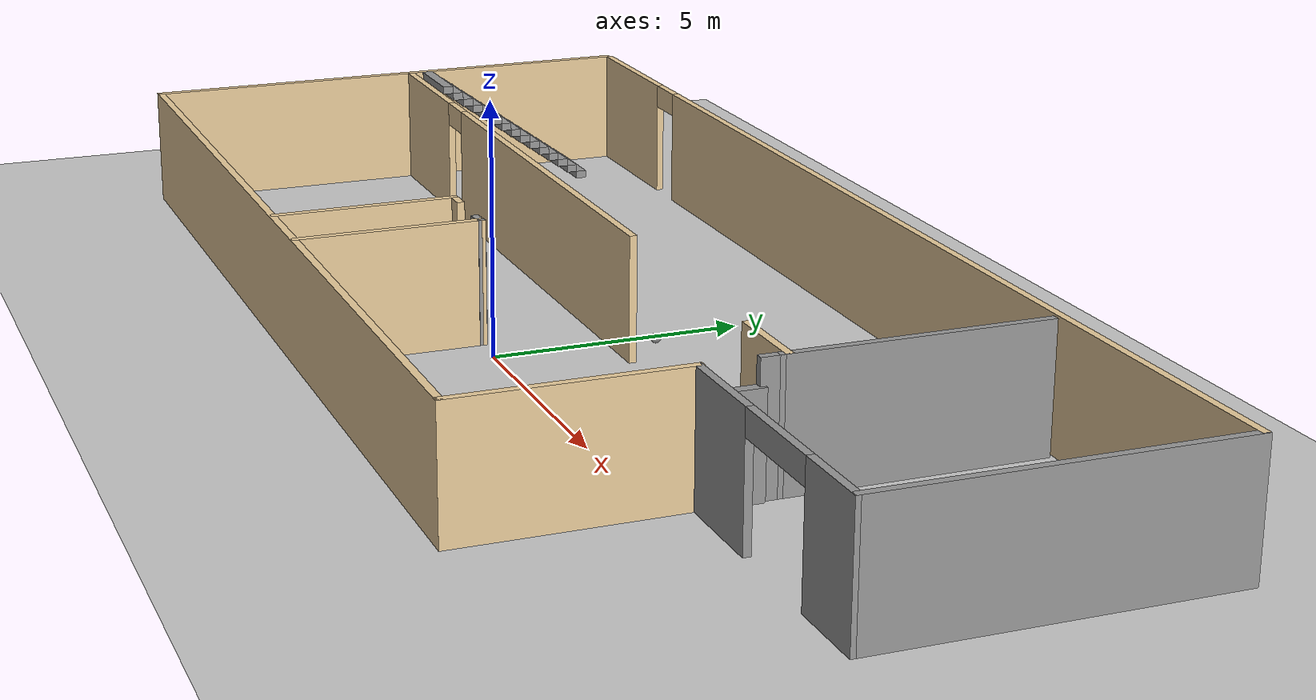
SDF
<sdf version="1.6">
 <world name="default">
  <plugin name="hello" filename="libhello.so"/>
  <light name="sun" type="directional">
   <pose>0 0 10 0 -0 0</pose>
   <diffuse>0.8 0.8 0.8 1</diffuse>
   <specular>0.2 0.2 0.2 1</specular>
   <attenuation>
    <range>1000</range>
    <constant>0.9</constant>
    <linear>0.01</linear>
    <quadratic>0.001</quadratic>
   </attenuation>
   <direction>-0.5 0.1 -0.9</direction>
  </light>
  <model name="ground_plane">
   <static>1</static>
   <link name="link">
    <collision name="collision">
     <geometry><plane><normal>0 0 1</normal><size>100 100</size></plane></geometry>
     <surface>
      <contact><collide_bitmask>65535</collide_bitmask></contact>
      <friction><ode><mu>100</mu><mu2>50</mu2></ode></friction>
     </surface>
    </collision>
    <visual name="visual">
     <cast_shadows>0</cast_shadows>
     <geometry><plane><normal>0 0 1</normal><size>100 100</size></plane></geometry>
     <material>
      <script><uri>file://media/materials/scripts/gazebo.material</uri><name>Gazebo/Grey</name></script>
     </material>
    </visual>
   </link>
  </model>
  <gravity>0 0 -9.8</gravity>
  <magnetic_field>6e-06 2.3e-05 -4.2e-05</magnetic_field>
  <atmosphere type="adiabatic"/>
  <physics name="default_physics" default="0" type="ode">
   <max_step_size>0.001</max_step_size>
   <real_time_factor>1</real_time_factor>
   <real_time_update_rate>1000</real_time_update_rate>
  </physics>
  <scene><ambient>0.4 0.4 0.4 1</ambient><background>0.7 0.7 0.7 1</background><shadows>1</shadows></scene>
  <spherical_coordinates>
   <surface_model>EARTH_WGS84</surface_model>
   <latitude_deg>0</latitude_deg>
   <longitude_deg>0</longitude_deg>
   <elevation>0</elevation>
   <heading_deg>0</heading_deg>
  </spherical_coordinates>
  <model name="building">
   <pose>0.37263 1.88759 0 0 -0 0</pose>
   <link name="Door_3">
    <collision name="Door_3_Collision">
     <geometry><box><size>1.03688 0.2 2</size></box></geometry>
     <pose>0 0 1 0 -0 0</pose>
    </collision>
    <visual name="Door_3_Visual">
     <pose>0 0 1 0 -0 0</pose>
     <geometry><box><size>1.03688 0.2 2</size></box></geometry>
     <material>
      <script><uri>file://media/materials/scripts/gazebo.material</uri><name>Gazebo/Grey</name></script>
     </material>
    </visual>
    <pose>7.76057 -0.531725 0 0 -0 1.56812</pose>
   </link>
   <link name="Door_4">
    <collision name="Door_4_Collision">
     <geometry><box><size>1.03688 0.2 2</size></box></geometry>
     <pose>0 0 1 0 -0 0</pose>
    </collision>
    <visual name="Door_4_Visual">
     <pose>0 0 1 0 -0 0</pose>
     <geometry><box><size>1.03688 0.2 2</size></box></geometry>
     <material>
      <script><uri>file://media/materials/scripts/gazebo.material</uri><name>Gazebo/Grey</name></script>
     </material>
    </visual>
    <pose>-1.9603 -1.81882 0 0 -0 0</pose>
   </link>
   <link name="Stairs_0">
    <visual name="Stairs_0_Visual_0">
     <pose>-12.4918 4.12213 0.083333 0 -0 0</pose>
     <geometry><box><size>1.62352 0.233333 0.166667</size></box></geometry>
     <material>
      <script><uri>file://media/materials/scripts/gazebo.material</uri><name>Gazebo/Grey</name></script>
      <ambient>1 1 1 1</ambient>
     </material>
     <meta><layer>0</layer></meta>
    </visual>
    <collision name="Stairs_0_Collision_0">
     <geometry><box><size>1.62352 0.233333 0.166667</size></box></geometry>
     <pose>-12.4918 4.12213 0.083333 0 -0 0</pose>
    </collision>
    <visual name="Stairs_0_Visual_1">
     <pose>-12.4918 3.8888 0.25 0 -0 0</pose>
     <geometry><box><size>1.62352 0.233333 0.166667</size></box></geometry>
     <material>
      <script><uri>file://media/materials/scripts/gazebo.material</uri><name>Gazebo/Grey</name></script>
      <ambient>1 1 1 1</ambient>
     </material>
     <meta><layer>0</layer></meta>
    </visual>
    <collision name="Stairs_0_Collision_1">
     <geometry><box><size>1.62352 0.233333 0.166667</size></box></geometry>
     <pose>-12.4918 3.8888 0.25 0 -0 0</pose>
    </collision>
    <visual name="Stairs_0_Visual_2">
     <pose>-12.4918 3.65546 0.416667 0 -0 0</pose>
     <geometry><box><size>1.62352 0.233333 0.166667</size></box></geometry>
     <material>
      <script><uri>file://media/materials/scripts/gazebo.material</uri><name>Gazebo/Grey</name></script>
      <ambient>1 1 1 1</ambient>
     </material>
     <meta><layer>0</layer></meta>
    </visual>
    <collision name="Stairs_0_Collision_2">
     <geometry><box><size>1.62352 0.233333 0.166667</size></box></geometry>
     <pose>-12.4918 3.65546 0.416667 0 -0 0</pose>
    </collision>
    <visual name="Stairs_0_Visual_3">
     <pose>-12.4918 3.42213 0.583333 0 -0 0</pose>
     <geometry><box><size>1.62352 0.233333 0.166667</size></box></geometry>
     <material>
      <script><uri>file://media/materials/scripts/gazebo.material</uri><name>Gazebo/Grey</name></script>
      <ambient>1 1 1 1</ambient>
     </material>
     <meta><layer>0</layer></meta>
    </visual>
    <collision name="Stairs_0_Collision_3">
     <geometry><box><size>1.62352 0.233333 0.166667</size></box></geometry>
     <pose>-12.4918 3.42213 0.583333 0 -0 0</pose>
    </collision>
    <visual name="Stairs_0_Visual_4">
     <pose>-12.4918 3.18879 0.75 0 -0 0</pose>
     <geometry><box><size>1.62352 0.233333 0.166667</size></box></geometry>
     <material>
      <script><uri>file://media/materials/scripts/gazebo.material</uri><name>Gazebo/Grey</name></script>
      <ambient>1 1 1 1</ambient>
     </material>
     <meta><layer>0</layer></meta>
    </visual>
    <collision name="Stairs_0_Collision_4">
     <geometry><box><size>1.62352 0.233333 0.166667</size></box></geometry>
     <pose>-12.4918 3.18879 0.75 0 -0 0</pose>
    </collision>
    <visual name="Stairs_0_Visual_5">
     <pose>-12.4918 2.95546 0.916667 0 -0 0</pose>
     <geometry><box><size>1.62352 0.233333 0.166667</size></box></geometry>
     <material>
      <script><uri>file://media/materials/scripts/gazebo.material</uri><name>Gazebo/Grey</name></script>
      <ambient>1 1 1 1</ambient>
     </material>
     <meta><layer>0</layer></meta>
    </visual>
    <collision name="Stairs_0_Collision_5">
     <geometry><box><size>1.62352 0.233333 0.166667</size></box></geometry>
     <pose>-12.4918 2.95546 0.916667 0 -0 0</pose>
    </collision>
    <visual name="Stairs_0_Visual_6">
     <pose>-12.4918 2.72213 1.08333 0 -0 0</pose>
     <geometry><box><size>1.62352 0.233333 0.166667</size></box></geometry>
     <material>
      <script><uri>file://media/materials/scripts/gazebo.material</uri><name>Gazebo/Grey</name></script>
      <ambient>1 1 1 1</ambient>
     </material>
     <meta><layer>0</layer></meta>
    </visual>
    <collision name="Stairs_0_Collision_6">
     <geometry><box><size>1.62352 0.233333 0.166667</size></box></geometry>
     <pose>-12.4918 2.72213 1.08333 0 -0 0</pose>
    </collision>
    <visual name="Stairs_0_Visual_7">
     <pose>-12.4918 2.4888 1.25 0 -0 0</pose>
     <geometry><box><size>1.62352 0.233333 0.166667</size></box></geometry>
     <material>
      <script><uri>file://media/materials/scripts/gazebo.material</uri><name>Gazebo/Grey</name></script>
      <ambient>1 1 1 1</ambient>
     </material>
     <meta><layer>0</layer></meta>
    </visual>
    <collision name="Stairs_0_Collision_7">
     <geometry><box><size>1.62352 0.233333 0.166667</size></box></geometry>
     <pose>-12.4918 2.4888 1.25 0 -0 0</pose>
    </collision>
    <visual name="Stairs_0_Visual_8">
     <pose>-12.4918 2.25546 1.41667 0 -0 0</pose>
     <geometry><box><size>1.62352 0.233333 0.166667</size></box></geometry>
     <material>
      <script><uri>file://media/materials/scripts/gazebo.material</uri><name>Gazebo/Grey</name></script>
      <ambient>1 1 1 1</ambient>
     </material>
     <meta><layer>0</layer></meta>
    </visual>
    <collision name="Stairs_0_Collision_8">
     <geometry><box><size>1.62352 0.233333 0.166667</size></box></geometry>
     <pose>-12.4918 2.25546 1.41667 0 -0 0</pose>
    </collision>
    <visual name="Stairs_0_Visual_9">
     <pose>-12.4918 2.02213 1.58333 0 -0 0</pose>
     <geometry><box><size>1.62352 0.233333 0.166667</size></box></geometry>
     <material>
      <script><uri>file://media/materials/scripts/gazebo.material</uri><name>Gazebo/Grey</name></script>
      <ambient>1 1 1 1</ambient>
     </material>
     <meta><layer>0</layer></meta>
    </visual>
    <collision name="Stairs_0_Collision_9">
     <geometry><box><size>1.62352 0.233333 0.166667</size></box></geometry>
     <pose>-12.4918 2.02213 1.58333 0 -0 0</pose>
    </collision>
    <visual name="Stairs_0_Visual_10">
     <pose>-12.4918 1.78879 1.75 0 -0 0</pose>
     <geometry><box><size>1.62352 0.233333 0.166667</size></box></geometry>
     <material>
      <script><uri>file://media/materials/scripts/gazebo.material</uri><name>Gazebo/Grey</name></script>
      <ambient>1 1 1 1</ambient>
     </material>
     <meta><layer>0</layer></meta>
    </visual>
    <collision name="Stairs_0_Collision_10">
     <geometry><box><size>1.62352 0.233333 0.166667</size></box></geometry>
     <pose>-12.4918 1.78879 1.75 0 -0 0</pose>
    </collision>
    <visual name="Stairs_0_Visual_11">
     <pose>-12.4918 1.55546 1.91667 0 -0 0</pose>
     <geometry><box><size>1.62352 0.233333 0.166667</size></box></geometry>
     <material>
      <script><uri>file://media/materials/scripts/gazebo.material</uri><name>Gazebo/Grey</name></script>
      <ambient>1 1 1 1</ambient>
     </material>
     <meta><layer>0</layer></meta>
    </visual>
    <collision name="Stairs_0_Collision_11">
     <geometry><box><size>1.62352 0.233333 0.166667</size></box></geometry>
     <pose>-12.4918 1.55546 1.91667 0 -0 0</pose>
    </collision>
    <visual name="Stairs_0_Visual_12">
     <pose>-12.4918 1.32213 2.08333 0 -0 0</pose>
     <geometry><box><size>1.62352 0.233333 0.166667</size></box></geometry>
     <material>
      <script><uri>file://media/materials/scripts/gazebo.material</uri><name>Gazebo/Grey</name></script>
      <ambient>1 1 1 1</ambient>
     </material>
     <meta><layer>0</layer></meta>
    </visual>
    <collision name="Stairs_0_Collision_12">
     <geometry><box><size>1.62352 0.233333 0.166667</size></box></geometry>
     <pose>-12.4918 1.32213 2.08333 0 -0 0</pose>
    </collision>
    <visual name="Stairs_0_Visual_13">
     <pose>-12.4918 1.08879 2.25 0 -0 0</pose>
     <geometry><box><size>1.62352 0.233333 0.166667</size></box></geometry>
     <material>
      <script><uri>file://media/materials/scripts/gazebo.material</uri><name>Gazebo/Grey</name></script>
      <ambient>1 1 1 1</ambient>
     </material>
     <meta><layer>0</layer></meta>
    </visual>
    <collision name="Stairs_0_Collision_13">
     <geometry><box><size>1.62352 0.233333 0.166667</size></box></geometry>
     <pose>-12.4918 1.08879 2.25 0 -0 0</pose>
    </collision>
    <visual name="Stairs_0_Visual_14">
     <pose>-12.4918 0.855462 2.41667 0 -0 0</pose>
     <geometry><box><size>1.62352 0.233333 0.166667</size></box></geometry>
     <material>
      <script><uri>file://media/materials/scripts/gazebo.material</uri><name>Gazebo/Grey</name></script>
      <ambient>1 1 1 1</ambient>
     </material>
     <meta><layer>0</layer></meta>
    </visual>
    <collision name="Stairs_0_Collision_14">
     <geometry><box><size>1.62352 0.233333 0.166667</size></box></geometry>
     <pose>-12.4918 0.855462 2.41667 0 -0 0</pose>
    </collision>
   </link>
   <link name="Wall_25">
    <collision name="Wall_25_Collision">
     <geometry><box><size>5 0.15 2.5</size></box></geometry>
     <pose>0 0 1.25 0 -0 0</pose>
    </collision>
    <visual name="Wall_25_Visual">
     <pose>0 0 1.25 0 -0 0</pose>
     <geometry><box><size>5 0.15 2.5</size></box></geometry>
     <material>
      <script><uri>file://media/materials/scripts/gazebo.material</uri><name>Gazebo/Grey</name></script>
      <ambient>1 1 1 1</ambient>
     </material>
     <meta><layer>0</layer></meta>
    </visual>
    <pose>7.72477 2.82672 0 0 -0 1.5708</pose>
   </link>
   <link name="Wall_27">
    <collision name="Wall_27_Collision">
     <geometry><box><size>1.75 0.15 2.5</size></box></geometry>
     <pose>0 0 1.25 0 -0 0</pose>
    </collision>
    <visual name="Wall_27_Visual">
     <pose>0 0 1.25 0 -0 0</pose>
     <geometry><box><size>1.75 0.15 2.5</size></box></geometry>
     <material>
      <script><uri>file://media/materials/scripts/gazebo.material</uri><name>Gazebo/Grey</name></script>
      <ambient>0.921569 0.807843 0.615686 1</ambient>
     </material>
     <meta><layer>0</layer></meta>
    </visual>
    <pose>6.92477 0.401723 0 0 -0 3.14159</pose>
   </link>
   <link name="Wall_3">
    <collision name="Wall_3_Collision">
     <geometry><box><size>11.0402 0.15 2.5</size></box></geometry>
     <pose>0 0 1.25 0 -0 0</pose>
    </collision>
    <visual name="Wall_3_Visual">
     <pose>0 0 1.25 0 -0 0</pose>
     <geometry><box><size>11.0402 0.15 2.5</size></box></geometry>
     <material>
      <script><uri>file://media/materials/scripts/gazebo.material</uri><name>Gazebo/Grey</name></script>
      <ambient>0.921569 0.807843 0.615686 1</ambient>
     </material>
     <meta><layer>0</layer></meta>
    </visual>
    <pose>-13.3703 -0.030083 0 0 0 -1.5708</pose>
   </link>
   <link name="Wall_30">
    <collision name="Wall_30_Collision">
     <geometry><box><size>3.75 0.15 2.5</size></box></geometry>
     <pose>0 0 1.25 0 -0 0</pose>
    </collision>
    <visual name="Wall_30_Visual">
     <pose>0 0 1.25 0 -0 0</pose>
     <geometry><box><size>3.75 0.15 2.5</size></box></geometry>
     <material>
      <script><uri>file://media/materials/scripts/gazebo.material</uri><name>Gazebo/Grey</name></script>
      <ambient>0.921569 0.807843 0.615686 1</ambient>
     </material>
     <meta><layer>0</layer></meta>
    </visual>
    <pose>-1.16848 -3.65032 0 0 -0 1.5708</pose>
   </link>
   <link name="Wall_32">
    <collision name="Wall_32_Collision">
     <geometry><box><size>3.75 0.15 2.5</size></box></geometry>
     <pose>0 0 1.25 0 -0 0</pose>
    </collision>
    <visual name="Wall_32_Visual">
     <pose>0 0 1.25 0 -0 0</pose>
     <geometry><box><size>3.75 0.15 2.5</size></box></geometry>
     <material>
      <script><uri>file://media/materials/scripts/gazebo.material</uri><name>Gazebo/Grey</name></script>
      <ambient>0.921569 0.807843 0.615686 1</ambient>
     </material>
     <meta><layer>0</layer></meta>
    </visual>
    <pose>-2.83355 -3.64195 0 0 0 -1.5708</pose>
   </link>
   <link name="Wall_34">
    <collision name="Wall_34_Collision">
     <geometry><box><size>0.25 0.15 2.5</size></box></geometry>
     <pose>0 0 1.25 0 -0 0</pose>
    </collision>
    <visual name="Wall_34_Visual">
     <pose>0 0 1.25 0 -0 0</pose>
     <geometry><box><size>0.25 0.15 2.5</size></box></geometry>
     <material>
      <script><uri>file://media/materials/scripts/gazebo.material</uri><name>Gazebo/Grey</name></script>
      <ambient>1 1 1 1</ambient>
     </material>
     <meta><layer>0</layer></meta>
    </visual>
    <pose>7.72477 0.351723 0 0 0 -1.5708</pose>
   </link>
   <link name="Wall_35">
    <collision name="Wall_35_Collision">
     <geometry><box><size>0.5 0.15 2.5</size></box></geometry>
     <pose>0 0 1.25 0 -0 0</pose>
    </collision>
    <visual name="Wall_35_Visual">
     <pose>0 0 1.25 0 -0 0</pose>
     <geometry><box><size>0.5 0.15 2.5</size></box></geometry>
     <material>
      <script><uri>file://media/materials/scripts/gazebo.material</uri><name>Gazebo/Grey</name></script>
      <ambient>1 1 1 1</ambient>
     </material>
     <meta><layer>0</layer></meta>
    </visual>
    <pose>7.72477 0.126723 0 0 0 -1.5708</pose>
   </link>
   <link name="Wall_37">
    <collision name="Wall_37_Collision">
     <geometry><box><size>0.5 0.15 2.5</size></box></geometry>
     <pose>0 0 1.25 0 -0 0</pose>
    </collision>
    <visual name="Wall_37_Visual">
     <pose>0 0 1.25 0 -0 0</pose>
     <geometry><box><size>0.5 0.15 2.5</size></box></geometry>
     <material>
      <script><uri>file://media/materials/scripts/gazebo.material</uri><name>Gazebo/Grey</name></script>
      <ambient>0.921569 0.807843 0.615686 1</ambient>
     </material>
     <meta><layer>0</layer></meta>
    </visual>
    <pose>-2.65855 -1.84195 0 0 -0 0</pose>
   </link>
   <link name="Wall_39">
    <collision name="Wall_39_Collision">
     <geometry><box><size>0.393542 0.15 2.5</size></box></geometry>
     <pose>0 0 1.25 0 -0 0</pose>
    </collision>
    <visual name="Wall_39_Visual">
     <pose>0 0 1.25 0 -0 0</pose>
     <geometry><box><size>0.393542 0.15 2.5</size></box></geometry>
     <material>
      <script><uri>file://media/materials/scripts/gazebo.material</uri><name>Gazebo/Grey</name></script>
      <ambient>1 1 1 1</ambient>
     </material>
     <meta><layer>0</layer></meta>
    </visual>
    <pose>-1.28983 -1.86041 0 0 -0 0.082935</pose>
   </link>
   <link name="Wall_4">
    <collision name="Wall_4_Collision">
     <geometry><box><size>21.25 0.15 2.5</size></box></geometry>
     <pose>0 0 1.25 0 -0 0</pose>
    </collision>
    <visual name="Wall_4_Visual">
     <pose>0 0 1.25 0 -0 0</pose>
     <geometry><box><size>21.25 0.15 2.5</size></box></geometry>
     <material>
      <script><uri>file://media/materials/scripts/gazebo.material</uri><name>Gazebo/Grey</name></script>
      <ambient>0.921569 0.807843 0.615686 1</ambient>
     </material>
     <meta><layer>0</layer></meta>
    </visual>
    <pose>-2.82034 -5.4752 0 0 -0 0</pose>
   </link>
   <link name="Wall_42">
    <pose>-6.26506 0.454716 0 0 -0 3.14159</pose>
    <visual name="Wall_42_Visual_0">
     <pose>-2.0528 0 1.25 0 -0 0</pose>
     <geometry><box><size>10.1444 0.15 2.5</size></box></geometry>
     <material>
      <script><uri>file://media/materials/scripts/gazebo.material</uri><name>Gazebo/Grey</name></script>
      <ambient>0.921569 0.807843 0.615686 1</ambient>
     </material>
     <meta><layer>0</layer></meta>
    </visual>
    <collision name="Wall_42_Collision_0">
     <geometry><box><size>10.1444 0.15 2.5</size></box></geometry>
     <pose>-2.0528 0 1.25 0 -0 0</pose>
    </collision>
    <visual name="Wall_42_Visual_1">
     <pose>5.5222 0 1.25 0 -0 0</pose>
     <geometry><box><size>3.2056 0.15 2.5</size></box></geometry>
     <material>
      <script><uri>file://media/materials/scripts/gazebo.material</uri><name>Gazebo/Grey</name></script>
      <ambient>0.921569 0.807843 0.615686 1</ambient>
     </material>
     <meta><layer>0</layer></meta>
    </visual>
    <collision name="Wall_42_Collision_1">
     <geometry><box><size>3.2056 0.15 2.5</size></box></geometry>
     <pose>5.5222 0 1.25 0 -0 0</pose>
    </collision>
    <visual name="Wall_42_Visual_2">
     <pose>3.4694 0 2.25 0 -0 0</pose>
     <geometry><box><size>0.9 0.15 0.5</size></box></geometry>
     <material>
      <script><uri>file://media/materials/scripts/gazebo.material</uri><name>Gazebo/Grey</name></script>
      <ambient>0.921569 0.807843 0.615686 1</ambient>
     </material>
     <meta><layer>0</layer></meta>
    </visual>
    <collision name="Wall_42_Collision_2">
     <geometry><box><size>0.9 0.15 0.5</size></box></geometry>
     <pose>3.4694 0 2.25 0 -0 0</pose>
    </collision>
   </link>
   <link name="Wall_5">
    <collision name="Wall_5_Collision">
     <geometry><box><size>4.4667 0.15 2.5</size></box></geometry>
     <pose>0 0 1.25 0 -0 0</pose>
    </collision>
    <visual name="Wall_5_Visual">
     <pose>0 0 1.25 0 -0 0</pose>
     <geometry><box><size>4.4667 0.15 2.5</size></box></geometry>
     <material>
      <script><uri>file://media/materials/scripts/gazebo.material</uri><name>Gazebo/Grey</name></script>
      <ambient>0.921569 0.807843 0.615686 1</ambient>
     </material>
     <meta><layer>0</layer></meta>
    </visual>
    <pose>7.72966 -3.31685 0 0 -0 1.5708</pose>
   </link>
   <link name="Wall_6">
    <pose>10.5297 -1.1737 0 0 -0 0</pose>
    <visual name="Wall_6_Visual_0">
     <pose>-1.84756 0 1.25 0 -0 0</pose>
     <geometry><box><size>2.05488 0.15 2.5</size></box></geometry>
     <material>
      <script><uri>file://media/materials/scripts/gazebo.material</uri><name>Gazebo/Grey</name></script>
      <ambient>1 1 1 1</ambient>
     </material>
     <meta><layer>0</layer></meta>
    </visual>
    <collision name="Wall_6_Collision_0">
     <geometry><box><size>2.05488 0.15 2.5</size></box></geometry>
     <pose>-1.84756 0 1.25 0 -0 0</pose>
    </collision>
    <visual name="Wall_6_Visual_1">
     <pose>2.08085 0 1.25 0 -0 0</pose>
     <geometry><box><size>1.58831 0.15 2.5</size></box></geometry>
     <material>
      <script><uri>file://media/materials/scripts/gazebo.material</uri><name>Gazebo/Grey</name></script>
      <ambient>1 1 1 1</ambient>
     </material>
     <meta><layer>0</layer></meta>
    </visual>
    <collision name="Wall_6_Collision_1">
     <geometry><box><size>1.58831 0.15 2.5</size></box></geometry>
     <pose>2.08085 0 1.25 0 -0 0</pose>
    </collision>
    <visual name="Wall_6_Visual_2">
     <pose>0.233287 0 2.25 0 -0 0</pose>
     <geometry><box><size>2.10681 0.15 0.5</size></box></geometry>
     <material>
      <script><uri>file://media/materials/scripts/gazebo.material</uri><name>Gazebo/Grey</name></script>
      <ambient>1 1 1 1</ambient>
     </material>
     <meta><layer>0</layer></meta>
    </visual>
    <collision name="Wall_6_Collision_2">
     <geometry><box><size>2.10681 0.15 0.5</size></box></geometry>
     <pose>0.233287 0 2.25 0 -0 0</pose>
    </collision>
   </link>
   <link name="Wall_7">
    <collision name="Wall_7_Collision">
     <geometry><box><size>6.7833 0.15 2.5</size></box></geometry>
     <pose>0 0 1.25 0 -0 0</pose>
    </collision>
    <visual name="Wall_7_Visual">
     <pose>0 0 1.25 0 -0 0</pose>
     <geometry><box><size>6.7833 0.15 2.5</size></box></geometry>
     <material>
      <script><uri>file://media/materials/scripts/gazebo.material</uri><name>Gazebo/Grey</name></script>
      <ambient>1 1 1 1</ambient>
     </material>
     <meta><layer>0</layer></meta>
    </visual>
    <pose>13.3498 2.15815 0 0 -0 1.56473</pose>
   </link>
   <link name="Wall_8">
    <pose>0.049774 5.4748 0 0 -0 3.14159</pose>
    <visual name="Wall_8_Visual_0">
     <pose>-2.09078 0 1.25 0 -0 0</pose>
     <geometry><box><size>22.5684 0.15 2.5</size></box></geometry>
     <material>
      <script><uri>file://media/materials/scripts/gazebo.material</uri><name>Gazebo/Grey</name></script>
      <ambient>0.921569 0.807843 0.615686 1</ambient>
     </material>
     <meta><layer>0</layer></meta>
    </visual>
    <collision name="Wall_8_Collision_0">
     <geometry><box><size>22.5684 0.15 2.5</size></box></geometry>
     <pose>-2.09078 0 1.25 0 -0 0</pose>
    </collision>
    <visual name="Wall_8_Visual_1">
     <pose>11.7342 0 1.25 0 -0 0</pose>
     <geometry><box><size>3.28157 0.15 2.5</size></box></geometry>
     <material>
      <script><uri>file://media/materials/scripts/gazebo.material</uri><name>Gazebo/Grey</name></script>
      <ambient>0.921569 0.807843 0.615686 1</ambient>
     </material>
     <meta><layer>0</layer></meta>
    </visual>
    <collision name="Wall_8_Collision_1">
     <geometry><box><size>3.28157 0.15 2.5</size></box></geometry>
     <pose>11.7342 0 1.25 0 -0 0</pose>
    </collision>
    <visual name="Wall_8_Visual_2">
     <pose>9.64343 0 2.25 0 -0 0</pose>
     <geometry><box><size>0.9 0.15 0.5</size></box></geometry>
     <material>
      <script><uri>file://media/materials/scripts/gazebo.material</uri><name>Gazebo/Grey</name></script>
      <ambient>0.921569 0.807843 0.615686 1</ambient>
     </material>
     <meta><layer>0</layer></meta>
    </visual>
    <collision name="Wall_8_Collision_2">
     <geometry><box><size>0.9 0.15 0.5</size></box></geometry>
     <pose>9.64343 0 2.25 0 -0 0</pose>
    </collision>
   </link>
   <static>1</static>
  </model>
  <model name="bookshelf">
   <static>1</static>
   <link name="link">
    <inertial><mass>1</mass></inertial>
    <collision name="back">
     <pose>0 0.005 0.6 0 -0 0</pose>
     <geometry><box><size>0.9 0.01 1.2</size></box></geometry>
    </collision>
    <visual name="visual1">
     <pose>0 0.005 0.6 0 -0 0</pose>
     <geometry><box><size>0.9 0.01 1.2</size></box></geometry>
     <material>
      <script><uri>file://media/materials/scripts/gazebo.material</uri><name>Gazebo/Wood</name></script>
     </material>
    </visual>
    <collision name="left_side">
     <pose>0.45 -0.195 0.6 0 -0 0</pose>
     <geometry><box><size>0.02 0.4 1.2</size></box></geometry>
    </collision>
    <visual name="visual2">
     <pose>0.45 -0.195 0.6 0 -0 0</pose>
     <geometry><box><size>0.02 0.4 1.2</size></box></geometry>
     <material>
      <script><uri>file://media/materials/scripts/gazebo.material</uri><name>Gazebo/Wood</name></script>
     </material>
    </visual>
    <collision name="right_side">
     <pose>-0.45 -0.195 0.6 0 -0 0</pose>
     <geometry><box><size>0.02 0.4 1.2</size></box></geometry>
    </collision>
    <visual name="visual3">
     <pose>-0.45 -0.195 0.6 0 -0 0</pose>
     <geometry><box><size>0.02 0.4 1.2</size></box></geometry>
     <material>
      <script><uri>file://media/materials/scripts/gazebo.material</uri><name>Gazebo/Wood</name></script>
     </material>
    </visual>
    <collision name="bottom">
     <pose>0 -0.195 0.03 0 -0 0</pose>
     <geometry><box><size>0.88 0.4 0.06</size></box></geometry>
    </collision>
    <visual name="visual4">
     <pose>0 -0.195 0.03 0 -0 0</pose>
     <geometry><box><size>0.88 0.4 0.06</size></box></geometry>
     <material>
      <script><uri>file://media/materials/scripts/gazebo.material</uri><name>Gazebo/Wood</name></script>
     </material>
    </visual>
    <collision name="top">
     <pose>0 -0.195 1.19 0 -0 0</pose>
     <geometry><box><size>0.88 0.4 0.02</size></box></geometry>
    </collision>
    <visual name="visual5">
     <pose>0 -0.195 1.19 0 -0 0</pose>
     <geometry><box><size>0.88 0.4 0.02</size></box></geometry>
     <material>
      <script><uri>file://media/materials/scripts/gazebo.material</uri><name>Gazebo/Wood</name></script>
     </material>
    </visual>
    <collision name="low_shelf">
     <pose>0 -0.195 0.43 0 -0 0</pose>
     <geometry><box><size>0.88 0.4 0.02</size></box></geometry>
    </collision>
    <visual name="visual6">
     <pose>0 -0.195 0.43 0 -0 0</pose>
     <geometry><box><size>0.88 0.4 0.02</size></box></geometry>
     <material>
      <script><uri>file://media/materials/scripts/gazebo.material</uri><name>Gazebo/Wood</name></script>
     </material>
    </visual>
    <collision name="high_shelf">
     <pose>0 -0.195 0.8 0 -0 0</pose>
     <geometry><box><size>0.88 0.4 0.02</size></box></geometry>
    </collision>
    <visual name="visual7">
     <pose>0 -0.195 0.8 0 -0 0</pose>
     <geometry><box><size>0.88 0.4 0.02</size></box></geometry>
     <material>
      <script><uri>file://media/materials/scripts/gazebo.material</uri><name>Gazebo/Wood</name></script>
     </material>
    </visual>
   </link>
   <pose>6.56661 6.72013 0 0 -0 0</pose>
  </model>
  <model name="table">
   <static>1</static>
   <link name="link">
    <collision name="surface">
     <pose>0 0 1 0 -0 0</pose>
     <geometry><box><size>1.5 0.8 0.03</size></box></geometry>
     <surface><friction><ode><mu>0.6</mu><mu2>0.6</mu2></ode></friction></surface>
    </collision>
    <visual name="visual1">
     <pose>0 0 1 0 -0 0</pose>
     <geometry><box><size>1.5 0.8 0.03</size></box></geometry>
     <material>
      <script><uri>file://media/materials/scripts/gazebo.material</uri><name>Gazebo/Wood</name></script>
     </material>
    </visual>
    <collision name="front_left_leg">
     <pose>0.68 0.38 0.5 0 -0 0</pose>
     <geometry><cylinder><radius>0.02</radius><length>1</length></cylinder></geometry>
    </collision>
    <visual name="front_left_leg">
     <pose>0.68 0.38 0.5 0 -0 0</pose>
     <geometry><cylinder><radius>0.02</radius><length>1</length></cylinder></geometry>
     <material>
      <script><uri>file://media/materials/scripts/gazebo.material</uri><name>Gazebo/Grey</name></script>
     </material>
    </visual>
    <collision name="front_right_leg">
     <pose>0.68 -0.38 0.5 0 -0 0</pose>
     <geometry><cylinder><radius>0.02</radius><length>1</length></cylinder></geometry>
    </collision>
    <visual name="front_right_leg">
     <pose>0.68 -0.38 0.5 0 -0 0</pose>
     <geometry><cylinder><radius>0.02</radius><length>1</length></cylinder></geometry>
     <material>
      <script><uri>file://media/materials/scripts/gazebo.material</uri><name>Gazebo/Grey</name></script>
     </material>
    </visual>
    <collision name="back_right_leg">
     <pose>-0.68 -0.38 0.5 0 -0 0</pose>
     <geometry><cylinder><radius>0.02</radius><length>1</length></cylinder></geometry>
    </collision>
    <visual name="back_right_leg">
     <pose>-0.68 -0.38 0.5 0 -0 0</pose>
     <geometry><cylinder><radius>0.02</radius><length>1</length></cylinder></geometry>
     <material>
      <script><uri>file://media/materials/scripts/gazebo.material</uri><name>Gazebo/Grey</name></script>
     </material>
    </visual>
    <collision name="back_left_leg">
     <pose>-0.68 0.38 0.5 0 -0 0</pose>
     <geometry><cylinder><radius>0.02</radius><length>1</length></cylinder></geometry>
    </collision>
    <visual name="back_left_leg">
     <pose>-0.68 0.38 0.5 0 -0 0</pose>
     <geometry><cylinder><radius>0.02</radius><length>1</length></cylinder></geometry>
     <material>
      <script><uri>file://media/materials/scripts/gazebo.material</uri><name>Gazebo/Grey</name></script>
     </material>
    </visual>
   </link>
   <pose>-3.01528 -1.10421 0 0 0 -1.57324</pose>
  </model>
  <model name="my_ball">
   <link name="link">
    <inertial>
     <mass>1</mass>
     <inertia><ixx>0.1</ixx><ixy>0</ixy><ixz>0</ixz><iyy>0.1</iyy><iyz>0</iyz><izz>0.1</izz></inertia>
    </inertial>
    <visual name="visual">
     <geometry><sphere><radius>0.1</radius></sphere></geometry>
     <material>
      <script><name>Gazebo/Grey</name><uri>file://media/materials/scripts/gazebo.material</uri></script>
      <shader type="pixel"><normal_map>__default__</normal_map></shader>
      <ambient>1 1 1 1</ambient>
      <diffuse>1 1 1 1</diffuse>
      <specular>1 1 1 1</specular>
      <emissive>1 1 1 1</emissive>
     </material>
    </visual>
    <collision name="collision">
     <geometry><sphere><radius>0.1</radius></sphere></geometry>
     <surface>
      <friction>
       <ode><mu>1</mu><mu2>1</mu2><fdir1>0 0 0</fdir1><slip1>0</slip1><slip2>0</slip2></ode>
       <torsional>
        <coefficient>1</coefficient>
        <patch_radius>0</patch_radius>
        <surface_radius>0</surface_radius>
        <use_patch_radius>1</use_patch_radius>
        <ode><slip>0</slip></ode>
       </torsional>
      </friction>
      <bounce><restitution_coefficient>0</restitution_coefficient><threshold>1e+06</threshold></bounce>
      <contact>
       <collide_without_contact>0</collide_without_contact>
       <collide_without_contact_bitmask>1</collide_without_contact_bitmask>
       <collide_bitmask>1</collide_bitmask>
       <ode>
        <soft_cfm>0</soft_cfm>
        <soft_erp>0.2</soft_erp>
        <kp>1e+13</kp>
        <kd>1</kd>
        <max_vel>0.01</max_vel>
        <min_depth>0</min_depth>
       </ode>
       <bullet>
        <split_impulse>1</split_impulse>
        <split_impulse_penetration_threshold>-0.01</split_impulse_penetration_threshold>
        <soft_cfm>0</soft_cfm>
        <soft_erp>0.2</soft_erp>
        <kp>1e+13</kp>
        <kd>1</kd>
       </bullet>
      </contact>
     </surface>
    </collision>
   </link>
   <static>0</static>
   <pose>0.33446 3.18349 0.1 0 -0 0</pose>
  </model>
  <plugin filename="libcollision_map_creator.so" name="collision_map_creator"/>
 </world>
</sdf>
